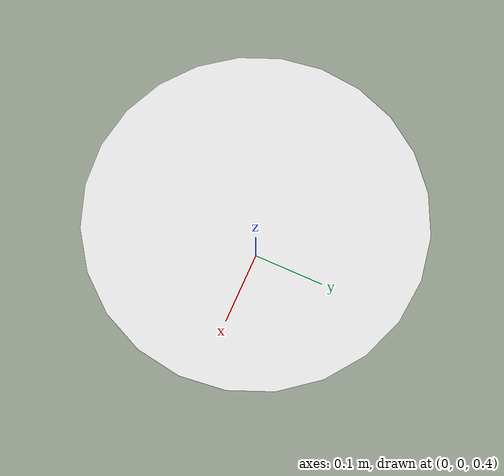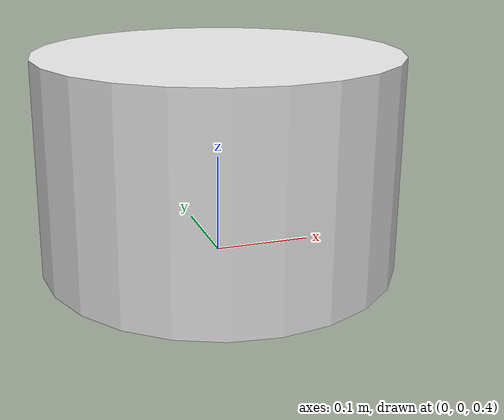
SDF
<sdf version='1.5'>
 <model name='mosquitoTrap'>
      <pose frame=''>0 0 0.5 0 -0 0</pose>
      <link name='link'>
        <inertial>
          <mass>1</mass>
          <inertia>
            <ixx>0.145833</ixx>
            <ixy>0</ixy>
            <ixz>0</ixz>
            <iyy>0.145833</iyy>
            <iyz>0</iyz>
            <izz>0.125</izz>
          </inertia>
        </inertial>
        <collision name='collision'>
          <geometry>
            <cylinder>
              <radius>0.179215</radius>
              <length>0.213191</length>
            </cylinder>
          </geometry>
          <max_contacts>10</max_contacts>
          <surface>
            <contact>
              <ode/>
            </contact>
            <bounce/>
            <friction>
              <ode/>
            </friction>
          </surface>
        </collision>
        <visual name='visual'>
          <geometry>
            <cylinder>
              <radius>0.179215</radius>
              <length>0.213191</length>
            </cylinder>
          </geometry>
          <material>
            <script>
              <name>Gazebo/White</name>
              <uri>file://media/materials/scripts/gazebo.material</uri>
            </script>
          </material>
        </visual>
        <self_collide>0</self_collide>
        <kinematic>0</kinematic>
        <gravity>1</gravity>
      </link>
    </model>
    </sdf>
